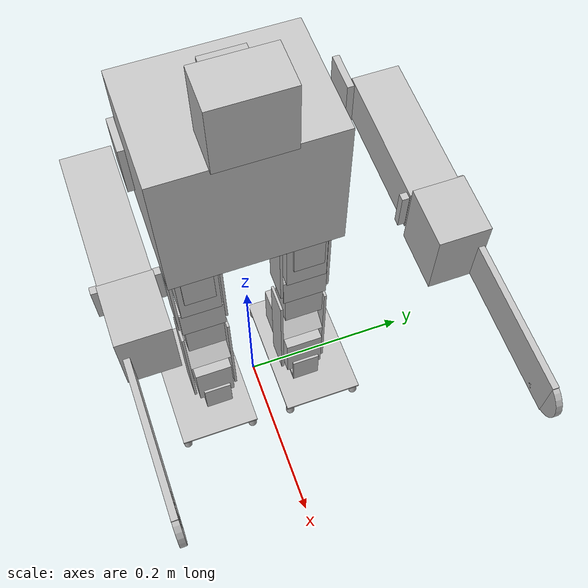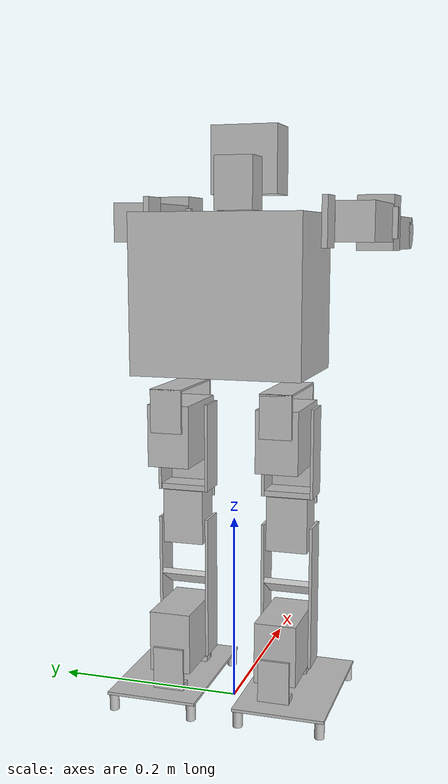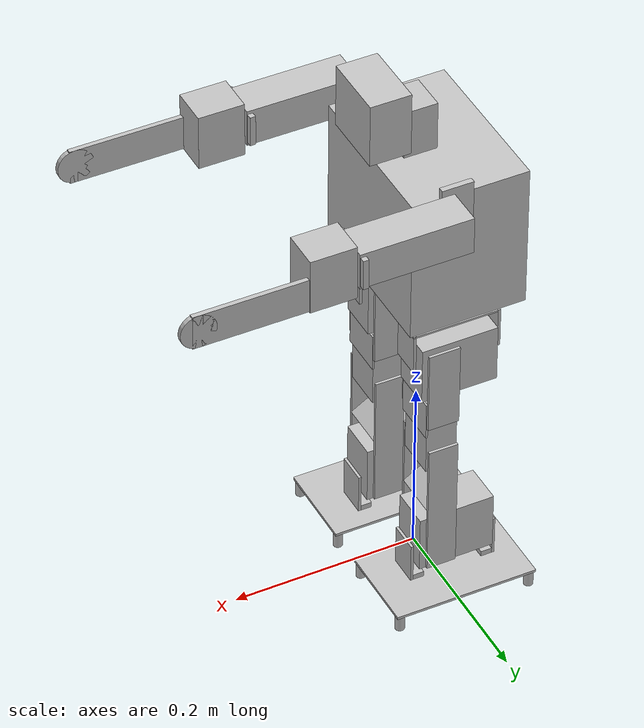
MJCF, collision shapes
<mujoco model="BFCSGY">
  <compiler meshdir="BFCSGY/" angle="radian"/>

      <!-- KP=12 -->
  <default>
      <default class="xh540">
            <position kp="21" forcerange="-11.7 11.7" />
            <joint damping="1.7" armature="0.025" frictionloss="0.10" />
      </default>
      <default class="mx64">
          <position kp="12.5" forcerange="-5 5" />
          <joint damping="0.66" armature="0.012" frictionloss="0.09" />
      </default>
      <default class="mx28">
            <position kp="12.5" forcerange="-2.5 2.5" />
            <joint damping="0.30" armature="0.012" frictionloss="0.09" />
      </default>
  </default>

  <asset>
    <mesh name="base_link" file="base_link.STL"/>
    <mesh name="head_yaw" file="head_yaw.STL"/>
    <mesh name="head_pitch" file="head_pitch.STL"/>
    <mesh name="right_shoulder_pitch" file="right_shoulder_pitch.STL"/>
    <mesh name="right_shoulder_roll" file="right_shoulder_roll.STL"/>
    <mesh name="right_elbow" file="right_elbow.STL"/>
    <mesh name="left_shoulder_pitch" file="left_shoulder_pitch.STL"/>
    <mesh name="left_shoulder_roll" file="left_shoulder_roll.STL"/>
    <mesh name="left_elbow" file="left_elbow.STL"/>
    <mesh name="right_hip_yaw" file="right_hip_yaw.STL"/>
    <mesh name="right_hip_roll" file="right_hip_roll.STL"/>
    <mesh name="right_hip_pitch" file="right_hip_pitch.STL"/>
    <mesh name="right_knee" file="right_knee.STL"/>
    <mesh name="right_ankle_pitch" file="right_ankle_pitch.STL"/>
    <mesh name="right_ankle_roll" file="right_ankle_roll.STL"/>
    <mesh name="left_hip_yaw" file="left_hip_yaw.STL"/>
    <mesh name="left_hip_roll" file="left_hip_roll.STL"/>
    <mesh name="left_hip_pitch" file="left_hip_pitch.STL"/>
    <mesh name="left_knee" file="left_knee.STL"/>
    <mesh name="left_ankle_pitch" file="left_ankle_pitch.STL"/>
    <mesh name="left_ankle_roll" file="left_ankle_roll.STL"/>
  </asset>

  <worldbody>
    <body name="torso_2025">
      <freejoint name="root" />
      <site name="torso" pos="0.037092 -0.0071251 0.424"/>
      <inertial pos="-0.011395 -0.00011334 0.42298" quat="0.495316 0.509324 -0.491161 0.503997" mass="2.6683" diaginertia="0.00387732 0.00258371 0.00199557"/>
      <geom type="mesh" rgba="0.75294 0.75294 0.75294 1" mesh="base_link" contype="0" conaffinity="0"/>
      <geom size="0.062635 0.08725 0.079875" pos="-0.00832 0 0.43732" type="box" contype="1" conaffinity="1" rgba="0.76 0.76 0.76 0.0"/>
      <body name="head_yaw" pos="0.010591 -0.00040235 0.51989" quat="1 0 0 -0.00092525">
        <inertial pos="-3.52689e-05 -0.000249759 0.0292646" quat="0.999288 -0.0377158 -0.000683142 -8.53322e-05" mass="0.0521726" diaginertia="1.29326e-05 1.08354e-05 8.40398e-06"/>
        <joint class="mx28" name="head_yaw" pos="0 0 0" axis="0 0 1" range="-1.5708 1.5708" actuatorfrcrange="-10 10"/>
        <geom type="mesh" rgba="0.76 0.76 0.76 0.0"  mesh="head_yaw" contype="0" conaffinity="0"/>
        <geom size="0.0178 0.020275 0.0269" pos="0 0 0.02691" type="box" contype="1" conaffinity="1" rgba="0.752941 0.752941 0.752941 1"/>
        <body name="head_pitch" pos="0 -0.0201 0.0418">
          <inertial pos="0.0393247 0.0197421 0.0108099" quat="0.707118 -0.00301909 -0.00322461 0.707082" mass="0.108465" diaginertia="5.06208e-05 4.77193e-05 2.87051e-05"/>
          <joint class="mx28" name="head_pitch" pos="0 0 0" axis="0 1 0" range="-2.007 0" actuatorfrcrange="-10 10"/>
          <geom type="mesh" rgba="0.752941 0.752941 0.752941 1" mesh="head_pitch" contype="0" conaffinity="0"/>
          <geom size="0.022 0.035625 0.035" pos="0.04 0.01965 0.01" type="box" rgba="0.76 0.76 0.76 0.0" contype="1" conaffinity="1"/>
          <site name="camera" pos="0.04075 0.0197871 -0.00516687" quat="0.707107 0 0.707107 0"/>
        </body>
      </body>
      <site name="trunk" pos="0.037092 -0.0071251 0.424"/>
      <body name="right_shoulder_pitch" pos="0.0103726 -0.0908949 0.508341" quat="1 0 0 -0.000925235">
        <inertial pos="0.00323585 -0.0103639 0" quat="0.566437 0.566437 0.42326 0.42326" mass="0.0269006" diaginertia="7.11805e-06 4.99646e-06 4.91774e-06"/>
        <joint class="mx64" name="right_shoulder_pitch" pos="0 0 0" axis="0 1 0" range="-1.3962634016 4.5378560552" actuatorfrcrange="-10 10"/>
        <geom type="mesh" rgba="0.752941 0.752941 0.752941 1" mesh="right_shoulder_pitch" contype="0" conaffinity="0"/>
        <geom size="0.017 0.003 0.026" pos="0 -0.003 0" type="box" contype="1" conaffinity="1" rgba="0.76 0.76 0.76 0.0"/>
        <body name="right_shoulder_roll" pos="0.018 -0.02874 0.0235">
          <inertial pos="0.0465254 -0.00427056 -0.0232541" quat="0.614898 0.375673 0.361774 0.591515" mass="0.170778" diaginertia="6.9802e-05 4.97295e-05 4.91167e-05"/>
          <joint class="mx64" name="right_shoulder_roll" pos="0 0 0" axis="0 0 1" range="-1.5708 0.2" actuatorfrcrange="-10 10"/>
          <geom type="mesh" rgba="0.752941 0.752941 0.752941 1" mesh="right_shoulder_roll" contype="0" conaffinity="0"/>
          <geom size="0.05997 0.0201 0.0205" pos="0.04697 0 -0.0233" type="box" contype="1" conaffinity="1" rgba="0.76 0.76 0.76 0.0"/>
          <geom size="0.003 0.026 0.017" pos="0.1035 0 -0.0233" type="box" contype="1" conaffinity="1" rgba="0.76 0.76 0.76 0.0"/>
          <body name="right_elbow" pos="0.12968 0.0235 -0.0053">
            <inertial pos="0.0294364 -0.0283003 -0.0204924" quat="0.511061 0.49617 0.504141 0.488339" mass="0.136739" diaginertia="8.4465e-05 7.30948e-05 3.69836e-05"/>
            <joint class="mx64" name="right_elbow" pos="0 0 0" axis="0 1 0" range="-2.9671 0.05236" actuatorfrcrange="-10 10"/>
            <geom type="mesh" mesh="right_elbow" contype="0" conaffinity="0" rgba="0.76 0.76 0.76 0.0"/>
            <geom size="0.02455 0.0205 0.03055" pos="0.00445 -0.0233 -0.01755" type="box" contype="1" conaffinity="1" rgba="0.752941 0.752941 0.752941 1"/>
            <geom size="0.06221 0.0025 0.019" pos="0.08659 -0.0388 -0.02833" type="box" contype="1" conaffinity="1" rgba="0.752941 0.752941 0.752941 1"/>
            <geom size="0.019 0.0025" pos="0.14246 -0.0388 -0.02833" quat="0.7071 0.7071 0 0" contype="1" conaffinity="1" type="cylinder" rgba="0.752941 0.752941 0.752941 1"/>
          </body>
        </body>
      </body>
      <body name="left_shoulder_pitch" pos="0.0107075 0.0900904 0.508341" quat="1 0 0 -0.000925235">
        <inertial pos="0.00321956 0.0103637 0" quat="0.42326 0.42326 0.566437 0.566437" mass="0.0269006" diaginertia="7.11805e-06 4.99646e-06 4.91774e-06"/>
        <joint class="mx64" name="left_shoulder_pitch" pos="0 0 0" axis="0 1 0" range="-1.3962634016 4.5378560552" actuatorfrcrange="-10 10"/>
        <geom type="mesh" rgba="0.752941 0.752941 0.752941 1" mesh="left_shoulder_pitch" contype="0" conaffinity="0"/>
        <geom size="0.017 0.003 0.026" pos="0 0.003 0" type="box" contype="1" conaffinity="1" rgba="0.76 0.76 0.76 0.0"/>
        <body name="left_shoulder_roll" pos="0.018 0.02874 0.0235">
          <inertial pos="0.0465133 0.00427539 -0.0231238" quat="0.592295 0.360697 0.374449 0.615526" mass="0.170778" diaginertia="6.97963e-05 4.97307e-05 4.91211e-05"/>
          <joint class="mx64" name="left_shoulder_roll" pos="0 0 0" axis="0 0 1" range="-0.2 1.5708" actuatorfrcrange="-10 10"/>
          <geom type="mesh" rgba="0.752941 0.752941 0.752941 1" mesh="left_shoulder_roll" contype="0" conaffinity="0"/>
          <geom size="0.05997 0.0201 0.0205" pos="0.04697 0 -0.0233" type="box" contype="1" conaffinity="1" rgba="0.76 0.76 0.76 0.0"/>
          <geom size="0.003 0.026 0.017" pos="0.1035 0 -0.0233" type="box" contype="1" conaffinity="1" rgba="0.76 0.76 0.76 0.0"/>
          <body name="left_elbow" pos="0.12968 -0.0235 -0.0053">
            <inertial pos="0.0294364 0.0286934 -0.0204924" quat="0.488344 0.504139 0.496171 0.511056" mass="0.136739" diaginertia="8.4465e-05 7.30948e-05 3.69836e-05"/>
            <joint class="mx64" name="left_elbow" pos="0 0 0" axis="0 1 0" range="-2.9671 0.05236" actuatorfrcrange="-10 10"/>
            <geom type="mesh" mesh="left_elbow" contype="0" conaffinity="0" rgba="0.76 0.76 0.76 0.0"/>
            <geom size="0.02455 0.0205 0.03055" pos="0.00445 0.0233 -0.01755" type="box" contype="1" conaffinity="1" rgba="0.752941 0.752941 0.752941 1" />
            <geom size="0.06221 0.0025 0.019" pos="0.08659 0.0398 -0.02833" type="box" contype="1" conaffinity="1" rgba="0.752941 0.752941 0.752941 1" />
            <geom size="0.019 0.0025" pos="0.14245 0.0398 -0.02833" quat="0.7071 0.7071 0 0" contype="1" conaffinity="1" type="cylinder" rgba="0.752941 0.752941 0.752941 1" />
          </body>
        </body>
      </body>
      <body name="right_hip_yaw" pos="0.0117163 -0.0576467 0.357941" quat="1 0 0 -0.000925235">
        <inertial pos="-0.0166971 -0.000106471 -0.0251977" quat="-0.000519814 0.707427 -0.000579359 0.706786" mass="0.0412461" diaginertia="2.28523e-05 2.10173e-05 6.93439e-06"/>
        <joint class="xh540" name="right_hip_yaw" pos="0 0 0" axis="0 0 1" range="-1 1" actuatorfrcrange="-10 10"/>
        <geom type="mesh" rgba="0.76 0.76 0.76 0.0" mesh="right_hip_yaw" contype="0" conaffinity="0"/>
        <geom size="0.04747 0.0165 0.001" pos="-0.01647 0 -0.0165" type="box" contype="1" conaffinity="1" rgba="0.752941 0.752941 0.752941 1"/>
        <geom size="0.0015 0.0165 0.022515" pos="0.0295 0 -0.038015" type="box" contype="1" conaffinity="1" rgba="0.752941 0.752941 0.752941 1"/>
        <geom size="0.0015 0.0165 0.022515" pos="-0.06244 0 -0.038015" type="box" contype="1" conaffinity="1" rgba="0.752941 0.752941 0.752941 1"/>
        <body name="right_hip_roll" pos="-0.0608 0.000102482 -0.0495">
          <inertial pos="0.0472878 0.000271422 -0.0147401" quat="0.707049 -0.00427129 -0.000110873 0.707152" mass="0.29679" diaginertia="0.000117301 0.000112228 7.861e-05"/>
          <joint class="xh540" name="right_hip_roll" pos="0 0 0" axis="1 0 0" range="-1.5708 0.1396" actuatorfrcrange="-10 10"/>
          <geom type="mesh" mesh="right_hip_roll" contype="0" conaffinity="0" rgba="0.76 0.76 0.76 0.0"/>
          <geom size="0.04125 0.022 0.03225" pos="0.04375 0 -0.0155" type="box" contype="1" conaffinity="1" rgba="0.752941 0.752941 0.752941 1" />
          <body name="right_hip_pitch" pos="0.06325 0.0245 0">
            <inertial pos="0.000517871 -0.0240757 -0.0891907" quat="0.999989 0.00296534 -0.00358315 9.28894e-05" mass="0.191635" diaginertia="9.16654e-05 8.12564e-05 4.27717e-05"/>
            <joint class="xh540" name="right_hip_pitch" pos="0 0 0" axis="0 1 0" range="-2 0.6981" actuatorfrcrange="-10 10"/>
            <geom type="mesh" mesh="right_hip_pitch" contype="0" conaffinity="0" rgba="0.76 0.76 0.76 0.0" />
            <geom size="0.016925 0.0015 0.046895" pos="0 -0.0505 -0.03489" type="box" contype="1" conaffinity="1" rgba="0.752941 0.752941 0.752941 1" />
            <geom size="0.016925 0.0015 0.046895" pos="0 0.0015 -0.03489" type="box" contype="1" conaffinity="1" rgba="0.752941 0.752941 0.752941 1" />
            <geom size="0.001 0.0245 0.021" pos="0.01685 -0.0245 -0.07252" type="box" contype="1" conaffinity="1" rgba="0.752941 0.752941 0.752941 1" />
            <geom size="0.01475 0.0245 0.003" pos="-0.0009 -0.0245 -0.07877" type="box" contype="1" conaffinity="1" rgba="0.752941 0.752941 0.752941 1" />
            <geom size="0.01675 0.022 0.02925" pos="-0.0009 -0.0245 -0.11102" type="box" contype="1" conaffinity="1" rgba="0.752941 0.752941 0.752941 1" />
            <body name="right_knee" pos="-0.0009 0 -0.126525">
              <inertial pos="8.42075e-05 -0.0245 -0.062172" quat="0.707104 -0.00215283 -0.00215283 0.707104" mass="0.0752049" diaginertia="0.000113982 0.000110334 1.05275e-05"/>
              <joint class="xh540" name="right_knee" pos="0 0 0" axis="0 1 0" range="-0.0175 2.2689" actuatorfrcrange="-10 10"/>
              <geom type="mesh" mesh="right_knee" contype="0" conaffinity="0" rgba="0.76 0.76 0.76 0.0" />
              <geom size="0.016 0.0015 0.07682" pos="0 -0.0505 -0.063" type="box" contype="1" conaffinity="1" rgba="0.752941 0.752941 0.752941 1"/>
              <geom size="0.016 0.0015 0.07682" pos="0 0.0015 -0.063" type="box" contype="1" conaffinity="1" rgba="0.752941 0.752941 0.752941 1"/>
              <geom size="0.003 0.0245 0.0175" pos="0.00012 -0.0245 -0.05612" quat="-0.87461970713 0 0.48480962024 0" type="box" contype="1" conaffinity="1" rgba="0.752941 0.752941 0.752941 1"/>
              <body name="right_ankle_pitch" pos="0 0 -0.126">
                <inertial pos="-0.0159622 -0.0242234 0.0147401" quat="0.70702 0.00428292 9.90207e-05 0.70718" mass="0.29679" diaginertia="0.000117301 0.000112228 7.86099e-05"/>
                <joint class="xh540" name="right_ankle_pitch" pos="0 0 0" axis="0 1 0" range="-1.5708 0.7854" actuatorfrcrange="-10 10"/>
                <geom type="mesh" mesh="right_ankle_pitch" contype="0" conaffinity="0" rgba="0.76 0.76 0.76 0.0"/>
                <geom size="0.04125 0.022 0.03225" pos="-0.0195 -0.0245 0.0155" type="box" contype="1" conaffinity="1" rgba="0.752941 0.752941 0.752941 1"/>
                <body name="right_ankle_roll" pos="-0.06325 -0.0245 0">
                <site name="right_foot"  pos="0.0497509 -0.0107452 -0.05436"/>
                  <inertial pos="0.0498586 -0.0102209 -0.0331448" quat="-0.0139403 0.706969 0.0139403 0.706969" mass="0.14896" diaginertia="0.000323092 0.000239725 8.88157e-05"/>
                  <joint class="xh540" name="right_ankle_roll" pos="0 0 0" axis="1 0 0" range="-1.5708 1.5708" actuatorfrcrange="-10 10"/>
                  <geom type="mesh" mesh="right_ankle_roll" contype="0" conaffinity="0" rgba="0.76 0.76 0.76 0.0"/>
                  <geom size="0.0015 0.0165 0.022515" pos="-0.0015 0 -0.01149" type="box" contype="1" conaffinity="1" rgba="0.752941 0.752941 0.752941 1"/>
                  <geom size="0.0015 0.0165 0.022515" pos="0.0903 0 -0.01149" type="box" contype="1" conaffinity="1" rgba="0.752941 0.752941 0.752941 1"/>
                  <geom size="0.006 0.0165 0.003" pos="0.006 0 -0.031" type="box" contype="1" conaffinity="1" rgba="0.752941 0.752941 0.752941 1"/>
                  <geom size="0.006 0.0165 0.003" pos="0.0828 0 -0.031" type="box" contype="1" conaffinity="1" rgba="0.752941 0.752941 0.752941 1"/>
                  <geom size="0.078 0.048 0.0015" pos="0.05 -0.01075 -0.0355" type="box" contype="1" conaffinity="1" rgba="0.752941 0.752941 0.752941 1"/>
                  <geom size="0.005 0.008715" pos="-0.02264 -0.0534 -0.04571" contype="1" conaffinity="1" type="cylinder" rgba="0.752941 0.752941 0.752941 1"/>
                  <geom size="0.005 0.008715" pos="0.12265 -0.0534 -0.04571" contype="1" conaffinity="1" type="cylinder" rgba="0.752941 0.752941 0.752941 1"/>
                  <geom size="0.005 0.008715" pos="0.12265 0.0319 -0.04571" contype="1" conaffinity="1" type="cylinder" rgba="0.752941 0.752941 0.752941 1"/>
                  <geom size="0.005 0.008715" pos="-0.02264 0.0319 -0.04571" contype="1" conaffinity="1" type="cylinder" rgba="0.752941 0.752941 0.752941 1"/>
                </body>
              </body>
            </body>
          </body>
        </body>
      </body>
      <body name="left_hip_yaw" pos="0.0119284 0.0569631 0.357941" quat="1 0 0 -0.000925235">
        <inertial pos="-0.0166969 -0.000137368 -0.0251977" quat="-0.00117382 0.707427 7.52425e-05 0.706785" mass="0.0412461" diaginertia="2.28523e-05 2.10173e-05 6.93439e-06"/>
        <joint class="xh540" name="left_hip_yaw" pos="0 0 0" axis="0 0 1" range="-1 1" actuatorfrcrange="-10 10"/>
        <geom type="mesh" mesh="left_hip_yaw" contype="0" conaffinity="0" rgba="0.76 0.76 0.76 0.0"/>
        <geom size="0.04747 0.0165 0.001" pos="-0.01647 0 -0.0165" type="box" contype="1" conaffinity="1" rgba="0.752941 0.752941 0.752941 1" />
        <geom size="0.0015 0.0165 0.022515" pos="0.0295 0 -0.038015" type="box" contype="1" conaffinity="1" rgba="0.752941 0.752941 0.752941 1" />
        <geom size="0.0015 0.0165 0.022515" pos="-0.06244 0 -0.038015" type="box" contype="1" conaffinity="1" rgba="0.752941 0.752941 0.752941 1" />
        <body name="left_hip_roll" pos="-0.0609423 -0.000182371 -0.0495" quat="1 0 0 0.000925235">
          <inertial pos="0.0472878 -0.000260774 -0.0147401" quat="0.707233 -9.86521e-05 -0.00428288 0.706967" mass="0.29679" diaginertia="0.000117301 0.000112228 7.86099e-05"/>
          <joint class="xh540" name="left_hip_roll" pos="0 0 0" axis="1 0 0" range="-0.1396 1.5708" actuatorfrcrange="-10 10"/>
          <geom type="mesh" mesh="left_hip_roll" contype="0" conaffinity="0" rgba="0.76 0.76 0.76 0.0"/>
          <geom size="0.04125 0.022 0.03225" pos="0.04375 0 -0.0155" type="box" contype="1" conaffinity="1" rgba="0.752941 0.752941 0.752941 1" />
          <body name="left_hip_pitch" pos="0.06325 -0.0245 0">
            <inertial pos="0.000517895 0.0240757 -0.0891906" quat="0.999989 -0.0029651 -0.00358319 -8.54657e-05" mass="0.191635" diaginertia="9.16655e-05 8.12564e-05 4.27718e-05"/>
            <joint class="xh540" name="left_hip_pitch" pos="0 0 0" axis="0 1 0" range="-2 0.6981" actuatorfrcrange="-10 10"/>
            <geom type="mesh" mesh="left_hip_pitch" contype="0" conaffinity="0" rgba="0.76 0.76 0.76 0.0" />
            <geom size="0.016925 0.0015 0.046895" pos="0 0.0505 -0.03489" type="box" contype="1" conaffinity="1" rgba="0.752941 0.752941 0.752941 1"/>
            <geom size="0.016925 0.0015 0.046895" pos="0 -0.0015 -0.03489" type="box" contype="1" conaffinity="1" rgba="0.752941 0.752941 0.752941 1"/>
            <geom size="0.001 0.0245 0.021" pos="0.01685 0.0245 -0.07252" type="box" contype="1" conaffinity="1" rgba="0.752941 0.752941 0.752941 1"/>
            <geom size="0.01475 0.0245 0.003" pos="-0.0009 0.0245 -0.07877" type="box" contype="1" conaffinity="1" rgba="0.752941 0.752941 0.752941 1"/>
            <geom size="0.01675 0.022 0.02925" pos="-0.0009 0.0245 -0.11102" type="box" contype="1" conaffinity="1" rgba="0.752941 0.752941 0.752941 1"/>
            <body name="left_knee" pos="-0.0009 0 -0.126525">
              <inertial pos="8.42075e-05 0.0245 -0.062172" quat="0.707104 -0.00215283 -0.00215283 0.707104" mass="0.0752049" diaginertia="0.000113982 0.000110334 1.05275e-05"/>
              <joint class="xh540" name="left_knee" pos="0 0 0" axis="0 1 0" range="-0.0175 2.2689" actuatorfrcrange="-10 10"/>
              <geom type="mesh" mesh="left_knee" contype="0" conaffinity="0" rgba="0.76 0.76 0.76 0.0" />
              <geom size="0.016 0.0015 0.07682" pos="0 0.0505 -0.063" type="box" contype="1" conaffinity="1" rgba="0.752941 0.752941 0.752941 1"/>
              <geom size="0.016 0.0015 0.07682" pos="0 -0.0015 -0.063" type="box" contype="1" conaffinity="1" rgba="0.752941 0.752941 0.752941 1" />
              <geom size="0.003 0.0245 0.0175" pos="0.00012 0.0245 -0.05612" quat="-0.87461970713 0 0.48480962024 0" type="box" contype="1" conaffinity="1" rgba="0.752941 0.752941 0.752941 1" />
              <body name="left_ankle_pitch" pos="0 0.000128914 -0.126">
                <inertial pos="-0.0159622 0.0242287 0.0147401" quat="0.707205 0.000110505 0.00427125 0.706996" mass="0.29679" diaginertia="0.000117301 0.000112228 7.861e-05"/>
                <joint class="xh540" name="left_ankle_pitch" pos="0 0 0" axis="0 1 0" range="-1.5708 0.7854" actuatorfrcrange="-10 10"/>
                <geom type="mesh" mesh="left_ankle_pitch" contype="0" conaffinity="0" rgba="0.76 0.76 0.76 0.0"/>
                <geom size="0.04125 0.022 0.03225" pos="-0.0195 0.0245 0.0155" type="box" contype="1" conaffinity="1" rgba="0.752941 0.752941 0.752941 1"/>
                <body name="left_ankle_roll" pos="-0.06325 0.0245 0">
                <site name="left_foot"  pos="0.0499145 0.0113901 -0.05436"/>
                  <inertial pos="0.0498586 0.0106635 -0.0331448" quat="0.0139413 0.706969 -0.0139413 0.706969" mass="0.14896" diaginertia="0.000323092 0.000239725 8.88157e-05"/>
                  <joint class="xh540" name="left_ankle_roll" pos="0 0 0" axis="1 0 0" range="-1.5708 1.5708" actuatorfrcrange="-10 10"/>
                  <geom type="mesh" mesh="left_ankle_roll" contype="0" conaffinity="0" rgba="0.76 0.76 0.76 0.0"/>
                  <geom size="0.0015 0.0165 0.022515" pos="-0.0015 0 -0.01149" type="box" contype="1" conaffinity="1" rgba="0.752941 0.752941 0.752941 1"/>
                  <geom size="0.0015 0.0165 0.022515" pos="0.0903 0 -0.01149" type="box" contype="1" conaffinity="1" rgba="0.752941 0.752941 0.752941 1"/>
                  <geom size="0.006 0.0165 0.003" pos="0.006 0 -0.031" type="box" contype="1" conaffinity="1" rgba="0.752941 0.752941 0.752941 1"/>
                  <geom size="0.006 0.0165 0.003" pos="0.0828 0 -0.031" type="box" contype="1" conaffinity="1" rgba="0.752941 0.752941 0.752941 1"/>
                  <geom size="0.078 0.048 0.0015" pos="0.05 0.01075 -0.0355" type="box" contype="1" conaffinity="1" rgba="0.752941 0.752941 0.752941 1"/>
                  <geom size="0.005 0.008715" pos="-0.02264 0.0534 -0.04571" contype="1" conaffinity="1" type="cylinder" rgba="0.752941 0.752941 0.752941 1"/>
                  <geom size="0.005 0.008715" pos="0.12265 0.0534 -0.04571" contype="1" conaffinity="1" type="cylinder" rgba="0.752941 0.752941 0.752941 1"/>
                  <geom size="0.005 0.008715" pos="0.12265 -0.0319 -0.04571" contype="1" conaffinity="1" type="cylinder" rgba="0.752941 0.752941 0.752941 1"/>
                  <geom size="0.005 0.008715" pos="-0.02264 -0.0319 -0.04571" contype="1" conaffinity="1" type="cylinder" rgba="0.752941 0.752941 0.752941 1"/>
                </body>
              </body>
            </body>
          </body>
        </body>
      </body>
      <body name="imu_link" pos="0.033092 -0.0047251 0.4226">
        <inertial pos="0 0 0" mass="0.01" diaginertia="1e-09 1e-09 1e-09"/>
      </body>
    </body>
  </worldbody>

  <sensor>
        <gyro site="torso" name="gyro" />
        <accelerometer site="torso" name="accelerometer" />
  </sensor>
  <actuator>
        <position class="xh540" name="left_hip_roll" joint="left_hip_roll" ctrlrange="-0.1396 1.5708" />
        <position class="xh540" name="left_hip_pitch" joint="left_hip_pitch" ctrlrange="-2 0.6981" />
        <position class="xh540" name="left_knee" joint="left_knee" ctrlrange="-0.0175 2.2689" />
        <position class="xh540" name="left_ankle_pitch" joint="left_ankle_pitch" ctrlrange="-1.5708 0.7854" />
        <position class="xh540" name="left_ankle_roll" joint="left_ankle_roll" ctrlrange="-1.5708 1.5708" />
        <position class="xh540" name="right_hip_roll" joint="right_hip_roll" ctrlrange="-1.5708 0.1396" />
        <position class="xh540" name="right_hip_pitch" joint="right_hip_pitch" ctrlrange="-2 0.6981" />
        <position class="xh540" name="right_knee" joint="right_knee" ctrlrange="-0.0175 2.2689" />
        <position class="xh540" name="right_ankle_pitch" joint="right_ankle_pitch" ctrlrange="-1.5708 0.7854" />
        <position class="xh540" name="right_ankle_roll" joint="right_ankle_roll" ctrlrange="-1.5708 1.5708" />

        <position class="mx28" name="head_yaw" joint="head_yaw" ctrlrange="-1.5708 1.5708" />
        <position class="mx28" name="head_pitch" joint="head_pitch" ctrlrange="-2.007 0" />
        <position class="xh540" name="left_hip_yaw" joint="left_hip_yaw" ctrlrange="-1 1" />
        <position class="xh540" name="right_hip_yaw" joint="right_hip_yaw" ctrlrange="-1 1" />
        <position class="mx64" name="left_shoulder_pitch" joint="left_shoulder_pitch" ctrlrange="-1.3962634016 4.5378560552" />
        <position class="mx64" name="left_elbow" joint="left_elbow" ctrlrange="-2.9671 0.05236" />
        <position class="mx64" name="right_shoulder_pitch" joint="right_shoulder_pitch" ctrlrange="-1.3962634016 4.5378560552" />
        <position class="mx64" name="right_elbow" joint="right_elbow" ctrlrange="-2.9671 0.05236" />
        <position class="mx64" name="left_shoulder_roll" joint="left_shoulder_roll" ctrlrange="-0.2 1.5708" />
        <position class="mx64" name="right_shoulder_roll" joint="right_shoulder_roll" ctrlrange="-1.5708 0.2" />
    </actuator>

</mujoco>
